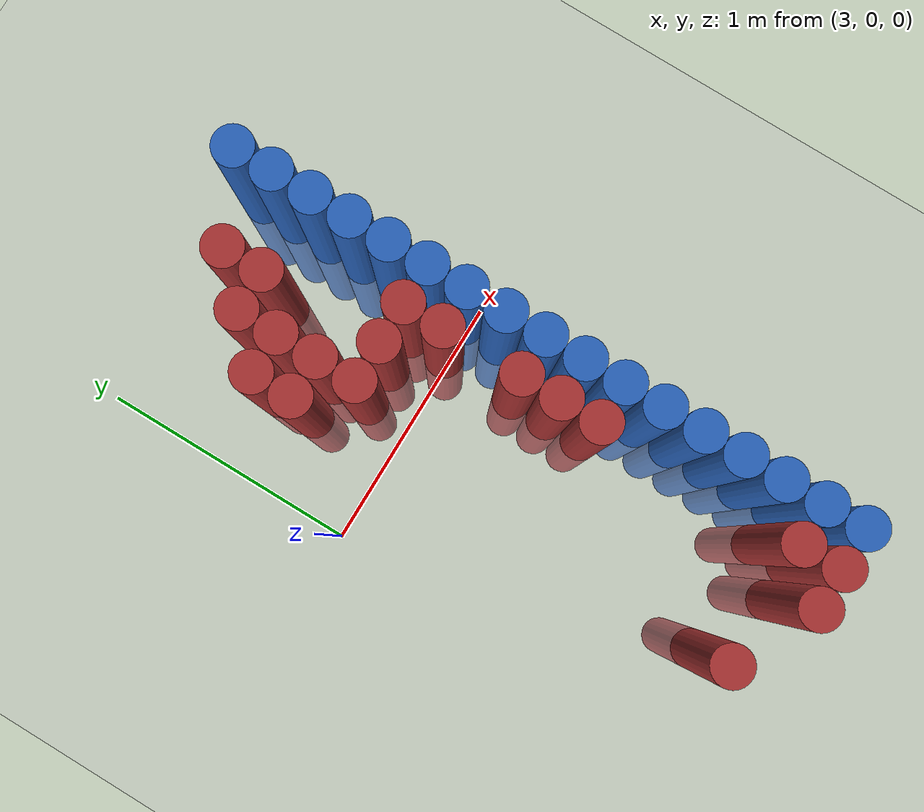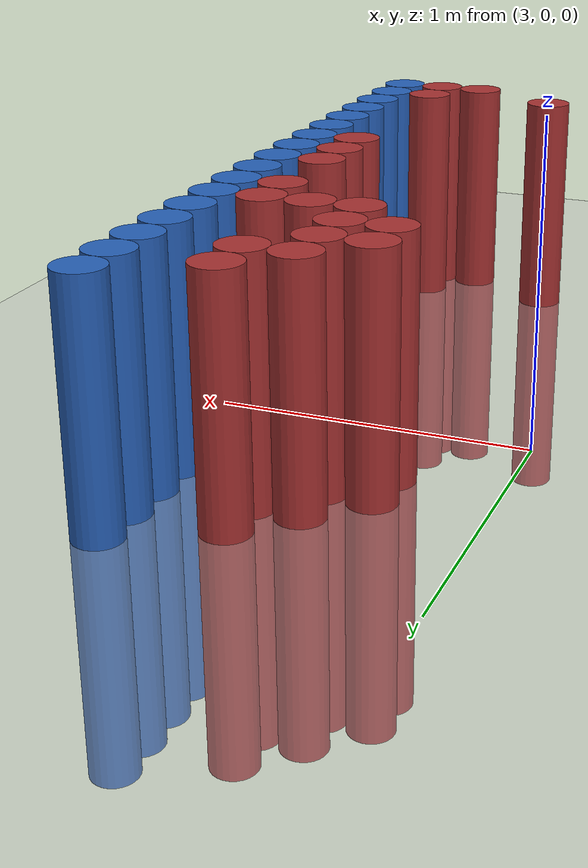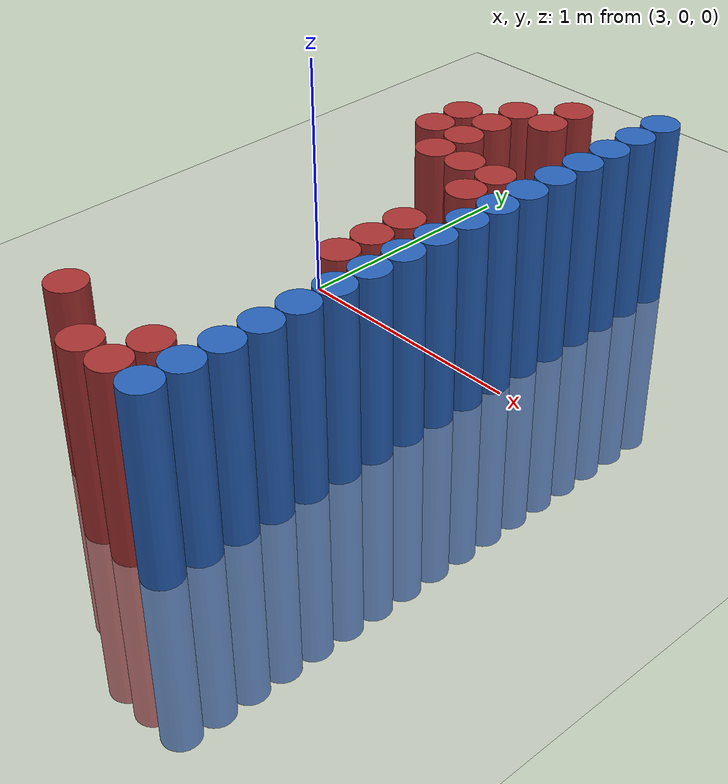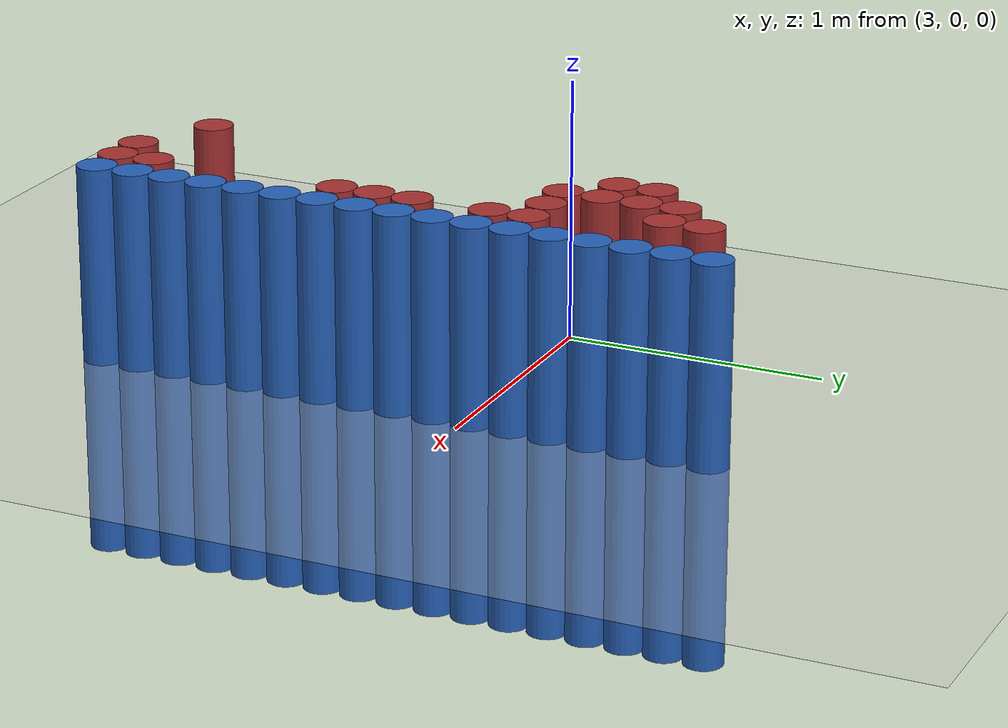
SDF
<sdf version="1.6">
 <world name="default">
  <model name="ground_plane">
   <static>1</static>
   <link name="link">
    <collision name="collision">
     <geometry><plane><normal>0 0 1</normal><size>100 100</size></plane></geometry>
     <surface><friction><ode><mu>100</mu><mu2>50</mu2></ode></friction></surface>
    </collision>
    <visual name="visual">
     <cast_shadows>0</cast_shadows>
     <geometry><plane><normal>0 0 1</normal><size>100 100</size></plane></geometry>
     <material>
      <script><uri>file://media/materials/scripts/gazebo.material</uri><name>Gazebo/Grey</name></script>
     </material>
    </visual>
   </link>
  </model>
  <model name="unit_cylinder_94">
   <static>1</static>
   <pose>3.925000 -1.475000 0.000000 0.000000 0.000000 0.000000</pose>
   <link name="link">
    <inertial>
     <mass>1</mass>
     <inertia><ixx>0.145833</ixx><ixy>0</ixy><ixz>0</ixz><iyy>0.145833</iyy><iyz>0</iyz><izz>0.125</izz></inertia>
    </inertial>
    <collision name="collision">
     <geometry><cylinder><radius>0.075000</radius><length>1.5</length></cylinder></geometry>
    </collision>
    <visual name="visual">
     <geometry><cylinder><radius>0.075000</radius><length>1.5</length></cylinder></geometry>
     <material>
      <ambient>0.152000 0.379000 0.720000 1</ambient>
      <diffuse>0.152000 0.379000 0.720000 1</diffuse>
     </material>
     <material>
      <script><name>Gazebo/Grey</name><uri>file://media/materials/scripts/gazebo.material</uri></script>
     </material>
    </visual>
   </link>
  </model>
  <model name="unit_cylinder_96">
   <static>1</static>
   <pose>3.925000 -1.325000 0.000000 0.000000 0.000000 0.000000</pose>
   <link name="link">
    <inertial>
     <mass>1</mass>
     <inertia><ixx>0.145833</ixx><ixy>0</ixy><ixz>0</ixz><iyy>0.145833</iyy><iyz>0</iyz><izz>0.125</izz></inertia>
    </inertial>
    <collision name="collision">
     <geometry><cylinder><radius>0.075000</radius><length>1.5</length></cylinder></geometry>
    </collision>
    <visual name="visual">
     <geometry><cylinder><radius>0.075000</radius><length>1.5</length></cylinder></geometry>
     <material>
      <ambient>0.152000 0.379000 0.720000 1</ambient>
      <diffuse>0.152000 0.379000 0.720000 1</diffuse>
     </material>
     <material>
      <script><name>Gazebo/Grey</name><uri>file://media/materials/scripts/gazebo.material</uri></script>
     </material>
    </visual>
   </link>
  </model>
  <model name="unit_cylinder_98">
   <static>1</static>
   <pose>3.925000 -1.175000 0.000000 0.000000 0.000000 0.000000</pose>
   <link name="link">
    <inertial>
     <mass>1</mass>
     <inertia><ixx>0.145833</ixx><ixy>0</ixy><ixz>0</ixz><iyy>0.145833</iyy><iyz>0</iyz><izz>0.125</izz></inertia>
    </inertial>
    <collision name="collision">
     <geometry><cylinder><radius>0.075000</radius><length>1.5</length></cylinder></geometry>
    </collision>
    <visual name="visual">
     <geometry><cylinder><radius>0.075000</radius><length>1.5</length></cylinder></geometry>
     <material>
      <ambient>0.152000 0.379000 0.720000 1</ambient>
      <diffuse>0.152000 0.379000 0.720000 1</diffuse>
     </material>
     <material>
      <script><name>Gazebo/Grey</name><uri>file://media/materials/scripts/gazebo.material</uri></script>
     </material>
    </visual>
   </link>
  </model>
  <model name="unit_cylinder_100">
   <static>1</static>
   <pose>3.925000 -1.025000 0.000000 0.000000 0.000000 0.000000</pose>
   <link name="link">
    <inertial>
     <mass>1</mass>
     <inertia><ixx>0.145833</ixx><ixy>0</ixy><ixz>0</ixz><iyy>0.145833</iyy><iyz>0</iyz><izz>0.125</izz></inertia>
    </inertial>
    <collision name="collision">
     <geometry><cylinder><radius>0.075000</radius><length>1.5</length></cylinder></geometry>
    </collision>
    <visual name="visual">
     <geometry><cylinder><radius>0.075000</radius><length>1.5</length></cylinder></geometry>
     <material>
      <ambient>0.152000 0.379000 0.720000 1</ambient>
      <diffuse>0.152000 0.379000 0.720000 1</diffuse>
     </material>
     <material>
      <script><name>Gazebo/Grey</name><uri>file://media/materials/scripts/gazebo.material</uri></script>
     </material>
    </visual>
   </link>
  </model>
  <model name="unit_cylinder_102">
   <static>1</static>
   <pose>3.925000 -0.875000 0.000000 0.000000 0.000000 0.000000</pose>
   <link name="link">
    <inertial>
     <mass>1</mass>
     <inertia><ixx>0.145833</ixx><ixy>0</ixy><ixz>0</ixz><iyy>0.145833</iyy><iyz>0</iyz><izz>0.125</izz></inertia>
    </inertial>
    <collision name="collision">
     <geometry><cylinder><radius>0.075000</radius><length>1.5</length></cylinder></geometry>
    </collision>
    <visual name="visual">
     <geometry><cylinder><radius>0.075000</radius><length>1.5</length></cylinder></geometry>
     <material>
      <ambient>0.152000 0.379000 0.720000 1</ambient>
      <diffuse>0.152000 0.379000 0.720000 1</diffuse>
     </material>
     <material>
      <script><name>Gazebo/Grey</name><uri>file://media/materials/scripts/gazebo.material</uri></script>
     </material>
    </visual>
   </link>
  </model>
  <model name="unit_cylinder_104">
   <static>1</static>
   <pose>3.925000 -0.725000 0.000000 0.000000 0.000000 0.000000</pose>
   <link name="link">
    <inertial>
     <mass>1</mass>
     <inertia><ixx>0.145833</ixx><ixy>0</ixy><ixz>0</ixz><iyy>0.145833</iyy><iyz>0</iyz><izz>0.125</izz></inertia>
    </inertial>
    <collision name="collision">
     <geometry><cylinder><radius>0.075000</radius><length>1.5</length></cylinder></geometry>
    </collision>
    <visual name="visual">
     <geometry><cylinder><radius>0.075000</radius><length>1.5</length></cylinder></geometry>
     <material>
      <ambient>0.152000 0.379000 0.720000 1</ambient>
      <diffuse>0.152000 0.379000 0.720000 1</diffuse>
     </material>
     <material>
      <script><name>Gazebo/Grey</name><uri>file://media/materials/scripts/gazebo.material</uri></script>
     </material>
    </visual>
   </link>
  </model>
  <model name="unit_cylinder_106">
   <static>1</static>
   <pose>3.925000 -0.575000 0.000000 0.000000 0.000000 0.000000</pose>
   <link name="link">
    <inertial>
     <mass>1</mass>
     <inertia><ixx>0.145833</ixx><ixy>0</ixy><ixz>0</ixz><iyy>0.145833</iyy><iyz>0</iyz><izz>0.125</izz></inertia>
    </inertial>
    <collision name="collision">
     <geometry><cylinder><radius>0.075000</radius><length>1.5</length></cylinder></geometry>
    </collision>
    <visual name="visual">
     <geometry><cylinder><radius>0.075000</radius><length>1.5</length></cylinder></geometry>
     <material>
      <ambient>0.152000 0.379000 0.720000 1</ambient>
      <diffuse>0.152000 0.379000 0.720000 1</diffuse>
     </material>
     <material>
      <script><name>Gazebo/Grey</name><uri>file://media/materials/scripts/gazebo.material</uri></script>
     </material>
    </visual>
   </link>
  </model>
  <model name="unit_cylinder_108">
   <static>1</static>
   <pose>3.925000 -0.425000 0.000000 0.000000 0.000000 0.000000</pose>
   <link name="link">
    <inertial>
     <mass>1</mass>
     <inertia><ixx>0.145833</ixx><ixy>0</ixy><ixz>0</ixz><iyy>0.145833</iyy><iyz>0</iyz><izz>0.125</izz></inertia>
    </inertial>
    <collision name="collision">
     <geometry><cylinder><radius>0.075000</radius><length>1.5</length></cylinder></geometry>
    </collision>
    <visual name="visual">
     <geometry><cylinder><radius>0.075000</radius><length>1.5</length></cylinder></geometry>
     <material>
      <ambient>0.152000 0.379000 0.720000 1</ambient>
      <diffuse>0.152000 0.379000 0.720000 1</diffuse>
     </material>
     <material>
      <script><name>Gazebo/Grey</name><uri>file://media/materials/scripts/gazebo.material</uri></script>
     </material>
    </visual>
   </link>
  </model>
  <model name="unit_cylinder_110">
   <static>1</static>
   <pose>3.925000 -0.275000 0.000000 0.000000 0.000000 0.000000</pose>
   <link name="link">
    <inertial>
     <mass>1</mass>
     <inertia><ixx>0.145833</ixx><ixy>0</ixy><ixz>0</ixz><iyy>0.145833</iyy><iyz>0</iyz><izz>0.125</izz></inertia>
    </inertial>
    <collision name="collision">
     <geometry><cylinder><radius>0.075000</radius><length>1.5</length></cylinder></geometry>
    </collision>
    <visual name="visual">
     <geometry><cylinder><radius>0.075000</radius><length>1.5</length></cylinder></geometry>
     <material>
      <ambient>0.152000 0.379000 0.720000 1</ambient>
      <diffuse>0.152000 0.379000 0.720000 1</diffuse>
     </material>
     <material>
      <script><name>Gazebo/Grey</name><uri>file://media/materials/scripts/gazebo.material</uri></script>
     </material>
    </visual>
   </link>
  </model>
  <model name="unit_cylinder_112">
   <static>1</static>
   <pose>3.925000 -0.125000 0.000000 0.000000 0.000000 0.000000</pose>
   <link name="link">
    <inertial>
     <mass>1</mass>
     <inertia><ixx>0.145833</ixx><ixy>0</ixy><ixz>0</ixz><iyy>0.145833</iyy><iyz>0</iyz><izz>0.125</izz></inertia>
    </inertial>
    <collision name="collision">
     <geometry><cylinder><radius>0.075000</radius><length>1.5</length></cylinder></geometry>
    </collision>
    <visual name="visual">
     <geometry><cylinder><radius>0.075000</radius><length>1.5</length></cylinder></geometry>
     <material>
      <ambient>0.152000 0.379000 0.720000 1</ambient>
      <diffuse>0.152000 0.379000 0.720000 1</diffuse>
     </material>
     <material>
      <script><name>Gazebo/Grey</name><uri>file://media/materials/scripts/gazebo.material</uri></script>
     </material>
    </visual>
   </link>
  </model>
  <model name="unit_cylinder_114">
   <static>1</static>
   <pose>3.925000 0.025000 0.000000 0.000000 0.000000 0.000000</pose>
   <link name="link">
    <inertial>
     <mass>1</mass>
     <inertia><ixx>0.145833</ixx><ixy>0</ixy><ixz>0</ixz><iyy>0.145833</iyy><iyz>0</iyz><izz>0.125</izz></inertia>
    </inertial>
    <collision name="collision">
     <geometry><cylinder><radius>0.075000</radius><length>1.5</length></cylinder></geometry>
    </collision>
    <visual name="visual">
     <geometry><cylinder><radius>0.075000</radius><length>1.5</length></cylinder></geometry>
     <material>
      <ambient>0.152000 0.379000 0.720000 1</ambient>
      <diffuse>0.152000 0.379000 0.720000 1</diffuse>
     </material>
     <material>
      <script><name>Gazebo/Grey</name><uri>file://media/materials/scripts/gazebo.material</uri></script>
     </material>
    </visual>
   </link>
  </model>
  <model name="unit_cylinder_116">
   <static>1</static>
   <pose>3.925000 0.175000 0.000000 0.000000 0.000000 0.000000</pose>
   <link name="link">
    <inertial>
     <mass>1</mass>
     <inertia><ixx>0.145833</ixx><ixy>0</ixy><ixz>0</ixz><iyy>0.145833</iyy><iyz>0</iyz><izz>0.125</izz></inertia>
    </inertial>
    <collision name="collision">
     <geometry><cylinder><radius>0.075000</radius><length>1.5</length></cylinder></geometry>
    </collision>
    <visual name="visual">
     <geometry><cylinder><radius>0.075000</radius><length>1.5</length></cylinder></geometry>
     <material>
      <ambient>0.152000 0.379000 0.720000 1</ambient>
      <diffuse>0.152000 0.379000 0.720000 1</diffuse>
     </material>
     <material>
      <script><name>Gazebo/Grey</name><uri>file://media/materials/scripts/gazebo.material</uri></script>
     </material>
    </visual>
   </link>
  </model>
  <model name="unit_cylinder_118">
   <static>1</static>
   <pose>3.925000 0.325000 0.000000 0.000000 0.000000 0.000000</pose>
   <link name="link">
    <inertial>
     <mass>1</mass>
     <inertia><ixx>0.145833</ixx><ixy>0</ixy><ixz>0</ixz><iyy>0.145833</iyy><iyz>0</iyz><izz>0.125</izz></inertia>
    </inertial>
    <collision name="collision">
     <geometry><cylinder><radius>0.075000</radius><length>1.5</length></cylinder></geometry>
    </collision>
    <visual name="visual">
     <geometry><cylinder><radius>0.075000</radius><length>1.5</length></cylinder></geometry>
     <material>
      <ambient>0.152000 0.379000 0.720000 1</ambient>
      <diffuse>0.152000 0.379000 0.720000 1</diffuse>
     </material>
     <material>
      <script><name>Gazebo/Grey</name><uri>file://media/materials/scripts/gazebo.material</uri></script>
     </material>
    </visual>
   </link>
  </model>
  <model name="unit_cylinder_120">
   <static>1</static>
   <pose>3.925000 0.475000 0.000000 0.000000 0.000000 0.000000</pose>
   <link name="link">
    <inertial>
     <mass>1</mass>
     <inertia><ixx>0.145833</ixx><ixy>0</ixy><ixz>0</ixz><iyy>0.145833</iyy><iyz>0</iyz><izz>0.125</izz></inertia>
    </inertial>
    <collision name="collision">
     <geometry><cylinder><radius>0.075000</radius><length>1.5</length></cylinder></geometry>
    </collision>
    <visual name="visual">
     <geometry><cylinder><radius>0.075000</radius><length>1.5</length></cylinder></geometry>
     <material>
      <ambient>0.152000 0.379000 0.720000 1</ambient>
      <diffuse>0.152000 0.379000 0.720000 1</diffuse>
     </material>
     <material>
      <script><name>Gazebo/Grey</name><uri>file://media/materials/scripts/gazebo.material</uri></script>
     </material>
    </visual>
   </link>
  </model>
  <model name="unit_cylinder_122">
   <static>1</static>
   <pose>3.925000 0.625000 0.000000 0.000000 0.000000 0.000000</pose>
   <link name="link">
    <inertial>
     <mass>1</mass>
     <inertia><ixx>0.145833</ixx><ixy>0</ixy><ixz>0</ixz><iyy>0.145833</iyy><iyz>0</iyz><izz>0.125</izz></inertia>
    </inertial>
    <collision name="collision">
     <geometry><cylinder><radius>0.075000</radius><length>1.5</length></cylinder></geometry>
    </collision>
    <visual name="visual">
     <geometry><cylinder><radius>0.075000</radius><length>1.5</length></cylinder></geometry>
     <material>
      <ambient>0.152000 0.379000 0.720000 1</ambient>
      <diffuse>0.152000 0.379000 0.720000 1</diffuse>
     </material>
     <material>
      <script><name>Gazebo/Grey</name><uri>file://media/materials/scripts/gazebo.material</uri></script>
     </material>
    </visual>
   </link>
  </model>
  <model name="unit_cylinder_124">
   <static>1</static>
   <pose>3.925000 0.775000 0.000000 0.000000 0.000000 0.000000</pose>
   <link name="link">
    <inertial>
     <mass>1</mass>
     <inertia><ixx>0.145833</ixx><ixy>0</ixy><ixz>0</ixz><iyy>0.145833</iyy><iyz>0</iyz><izz>0.125</izz></inertia>
    </inertial>
    <collision name="collision">
     <geometry><cylinder><radius>0.075000</radius><length>1.5</length></cylinder></geometry>
    </collision>
    <visual name="visual">
     <geometry><cylinder><radius>0.075000</radius><length>1.5</length></cylinder></geometry>
     <material>
      <ambient>0.152000 0.379000 0.720000 1</ambient>
      <diffuse>0.152000 0.379000 0.720000 1</diffuse>
     </material>
     <material>
      <script><name>Gazebo/Grey</name><uri>file://media/materials/scripts/gazebo.material</uri></script>
     </material>
    </visual>
   </link>
  </model>
  <model name="unit_cylinder_126">
   <static>1</static>
   <pose>3.925000 0.925000 0.000000 0.000000 0.000000 0.000000</pose>
   <link name="link">
    <inertial>
     <mass>1</mass>
     <inertia><ixx>0.145833</ixx><ixy>0</ixy><ixz>0</ixz><iyy>0.145833</iyy><iyz>0</iyz><izz>0.125</izz></inertia>
    </inertial>
    <collision name="collision">
     <geometry><cylinder><radius>0.075000</radius><length>1.5</length></cylinder></geometry>
    </collision>
    <visual name="visual">
     <geometry><cylinder><radius>0.075000</radius><length>1.5</length></cylinder></geometry>
     <material>
      <ambient>0.152000 0.379000 0.720000 1</ambient>
      <diffuse>0.152000 0.379000 0.720000 1</diffuse>
     </material>
     <material>
      <script><name>Gazebo/Grey</name><uri>file://media/materials/scripts/gazebo.material</uri></script>
     </material>
    </visual>
   </link>
  </model>
  <model name="unit_cylinder_551">
   <static>1</static>
   <pose>3.325000 -1.325000 0.000000 0.000000 0.000000 0.000000</pose>
   <link name="link">
    <inertial>
     <mass>1</mass>
     <inertia><ixx>0.145833</ixx><ixy>0</ixy><ixz>0</ixz><iyy>0.145833</iyy><iyz>0</iyz><izz>0.125</izz></inertia>
    </inertial>
    <collision name="collision">
     <geometry><cylinder><radius>0.075000</radius><length>1.5</length></cylinder></geometry>
    </collision>
    <visual name="visual">
     <geometry><cylinder><radius>0.075000</radius><length>1.5</length></cylinder></geometry>
     <material>
      <ambient>0.648000 0.192000 0.192000 1</ambient>
      <diffuse>0.648000 0.192000 0.192000 1</diffuse>
     </material>
     <material>
      <script><name>Gazebo/Grey</name><uri>file://media/materials/scripts/gazebo.material</uri></script>
     </material>
    </visual>
   </link>
  </model>
  <model name="unit_cylinder_552">
   <static>1</static>
   <pose>3.325000 0.325000 0.000000 0.000000 0.000000 0.000000</pose>
   <link name="link">
    <inertial>
     <mass>1</mass>
     <inertia><ixx>0.145833</ixx><ixy>0</ixy><ixz>0</ixz><iyy>0.145833</iyy><iyz>0</iyz><izz>0.125</izz></inertia>
    </inertial>
    <collision name="collision">
     <geometry><cylinder><radius>0.075000</radius><length>1.5</length></cylinder></geometry>
    </collision>
    <visual name="visual">
     <geometry><cylinder><radius>0.075000</radius><length>1.5</length></cylinder></geometry>
     <material>
      <ambient>0.648000 0.192000 0.192000 1</ambient>
      <diffuse>0.648000 0.192000 0.192000 1</diffuse>
     </material>
     <material>
      <script><name>Gazebo/Grey</name><uri>file://media/materials/scripts/gazebo.material</uri></script>
     </material>
    </visual>
   </link>
  </model>
  <model name="unit_cylinder_553">
   <static>1</static>
   <pose>3.325000 0.475000 0.000000 0.000000 0.000000 0.000000</pose>
   <link name="link">
    <inertial>
     <mass>1</mass>
     <inertia><ixx>0.145833</ixx><ixy>0</ixy><ixz>0</ixz><iyy>0.145833</iyy><iyz>0</iyz><izz>0.125</izz></inertia>
    </inertial>
    <collision name="collision">
     <geometry><cylinder><radius>0.075000</radius><length>1.5</length></cylinder></geometry>
    </collision>
    <visual name="visual">
     <geometry><cylinder><radius>0.075000</radius><length>1.5</length></cylinder></geometry>
     <material>
      <ambient>0.648000 0.192000 0.192000 1</ambient>
      <diffuse>0.648000 0.192000 0.192000 1</diffuse>
     </material>
     <material>
      <script><name>Gazebo/Grey</name><uri>file://media/materials/scripts/gazebo.material</uri></script>
     </material>
    </visual>
   </link>
  </model>
  <model name="unit_cylinder_566">
   <static>1</static>
   <pose>3.475000 0.175000 0.000000 0.000000 0.000000 0.000000</pose>
   <link name="link">
    <inertial>
     <mass>1</mass>
     <inertia><ixx>0.145833</ixx><ixy>0</ixy><ixz>0</ixz><iyy>0.145833</iyy><iyz>0</iyz><izz>0.125</izz></inertia>
    </inertial>
    <collision name="collision">
     <geometry><cylinder><radius>0.075000</radius><length>1.5</length></cylinder></geometry>
    </collision>
    <visual name="visual">
     <geometry><cylinder><radius>0.075000</radius><length>1.5</length></cylinder></geometry>
     <material>
      <ambient>0.648000 0.192000 0.192000 1</ambient>
      <diffuse>0.648000 0.192000 0.192000 1</diffuse>
     </material>
     <material>
      <script><name>Gazebo/Grey</name><uri>file://media/materials/scripts/gazebo.material</uri></script>
     </material>
    </visual>
   </link>
  </model>
  <model name="unit_cylinder_567">
   <static>1</static>
   <pose>3.475000 0.325000 0.000000 0.000000 0.000000 0.000000</pose>
   <link name="link">
    <inertial>
     <mass>1</mass>
     <inertia><ixx>0.145833</ixx><ixy>0</ixy><ixz>0</ixz><iyy>0.145833</iyy><iyz>0</iyz><izz>0.125</izz></inertia>
    </inertial>
    <collision name="collision">
     <geometry><cylinder><radius>0.075000</radius><length>1.5</length></cylinder></geometry>
    </collision>
    <visual name="visual">
     <geometry><cylinder><radius>0.075000</radius><length>1.5</length></cylinder></geometry>
     <material>
      <ambient>0.648000 0.192000 0.192000 1</ambient>
      <diffuse>0.648000 0.192000 0.192000 1</diffuse>
     </material>
     <material>
      <script><name>Gazebo/Grey</name><uri>file://media/materials/scripts/gazebo.material</uri></script>
     </material>
    </visual>
   </link>
  </model>
  <model name="unit_cylinder_568">
   <static>1</static>
   <pose>3.475000 0.475000 0.000000 0.000000 0.000000 0.000000</pose>
   <link name="link">
    <inertial>
     <mass>1</mass>
     <inertia><ixx>0.145833</ixx><ixy>0</ixy><ixz>0</ixz><iyy>0.145833</iyy><iyz>0</iyz><izz>0.125</izz></inertia>
    </inertial>
    <collision name="collision">
     <geometry><cylinder><radius>0.075000</radius><length>1.5</length></cylinder></geometry>
    </collision>
    <visual name="visual">
     <geometry><cylinder><radius>0.075000</radius><length>1.5</length></cylinder></geometry>
     <material>
      <ambient>0.648000 0.192000 0.192000 1</ambient>
      <diffuse>0.648000 0.192000 0.192000 1</diffuse>
     </material>
     <material>
      <script><name>Gazebo/Grey</name><uri>file://media/materials/scripts/gazebo.material</uri></script>
     </material>
    </visual>
   </link>
  </model>
  <model name="unit_cylinder_569">
   <static>1</static>
   <pose>3.475000 0.625000 0.000000 0.000000 0.000000 0.000000</pose>
   <link name="link">
    <inertial>
     <mass>1</mass>
     <inertia><ixx>0.145833</ixx><ixy>0</ixy><ixz>0</ixz><iyy>0.145833</iyy><iyz>0</iyz><izz>0.125</izz></inertia>
    </inertial>
    <collision name="collision">
     <geometry><cylinder><radius>0.075000</radius><length>1.5</length></cylinder></geometry>
    </collision>
    <visual name="visual">
     <geometry><cylinder><radius>0.075000</radius><length>1.5</length></cylinder></geometry>
     <material>
      <ambient>0.648000 0.192000 0.192000 1</ambient>
      <diffuse>0.648000 0.192000 0.192000 1</diffuse>
     </material>
     <material>
      <script><name>Gazebo/Grey</name><uri>file://media/materials/scripts/gazebo.material</uri></script>
     </material>
    </visual>
   </link>
  </model>
  <model name="unit_cylinder_581">
   <static>1</static>
   <pose>3.625000 -1.475000 0.000000 0.000000 0.000000 0.000000</pose>
   <link name="link">
    <inertial>
     <mass>1</mass>
     <inertia><ixx>0.145833</ixx><ixy>0</ixy><ixz>0</ixz><iyy>0.145833</iyy><iyz>0</iyz><izz>0.125</izz></inertia>
    </inertial>
    <collision name="collision">
     <geometry><cylinder><radius>0.075000</radius><length>1.5</length></cylinder></geometry>
    </collision>
    <visual name="visual">
     <geometry><cylinder><radius>0.075000</radius><length>1.5</length></cylinder></geometry>
     <material>
      <ambient>0.648000 0.192000 0.192000 1</ambient>
      <diffuse>0.648000 0.192000 0.192000 1</diffuse>
     </material>
     <material>
      <script><name>Gazebo/Grey</name><uri>file://media/materials/scripts/gazebo.material</uri></script>
     </material>
    </visual>
   </link>
  </model>
  <model name="unit_cylinder_582">
   <static>1</static>
   <pose>3.625000 0.175000 0.000000 0.000000 0.000000 0.000000</pose>
   <link name="link">
    <inertial>
     <mass>1</mass>
     <inertia><ixx>0.145833</ixx><ixy>0</ixy><ixz>0</ixz><iyy>0.145833</iyy><iyz>0</iyz><izz>0.125</izz></inertia>
    </inertial>
    <collision name="collision">
     <geometry><cylinder><radius>0.075000</radius><length>1.5</length></cylinder></geometry>
    </collision>
    <visual name="visual">
     <geometry><cylinder><radius>0.075000</radius><length>1.5</length></cylinder></geometry>
     <material>
      <ambient>0.648000 0.192000 0.192000 1</ambient>
      <diffuse>0.648000 0.192000 0.192000 1</diffuse>
     </material>
     <material>
      <script><name>Gazebo/Grey</name><uri>file://media/materials/scripts/gazebo.material</uri></script>
     </material>
    </visual>
   </link>
  </model>
  <model name="unit_cylinder_583">
   <static>1</static>
   <pose>3.625000 0.625000 0.000000 0.000000 0.000000 0.000000</pose>
   <link name="link">
    <inertial>
     <mass>1</mass>
     <inertia><ixx>0.145833</ixx><ixy>0</ixy><ixz>0</ixz><iyy>0.145833</iyy><iyz>0</iyz><izz>0.125</izz></inertia>
    </inertial>
    <collision name="collision">
     <geometry><cylinder><radius>0.075000</radius><length>1.5</length></cylinder></geometry>
    </collision>
    <visual name="visual">
     <geometry><cylinder><radius>0.075000</radius><length>1.5</length></cylinder></geometry>
     <material>
      <ambient>0.648000 0.192000 0.192000 1</ambient>
      <diffuse>0.648000 0.192000 0.192000 1</diffuse>
     </material>
     <material>
      <script><name>Gazebo/Grey</name><uri>file://media/materials/scripts/gazebo.material</uri></script>
     </material>
    </visual>
   </link>
  </model>
  <model name="unit_cylinder_584">
   <static>1</static>
   <pose>3.625000 0.775000 0.000000 0.000000 0.000000 0.000000</pose>
   <link name="link">
    <inertial>
     <mass>1</mass>
     <inertia><ixx>0.145833</ixx><ixy>0</ixy><ixz>0</ixz><iyy>0.145833</iyy><iyz>0</iyz><izz>0.125</izz></inertia>
    </inertial>
    <collision name="collision">
     <geometry><cylinder><radius>0.075000</radius><length>1.5</length></cylinder></geometry>
    </collision>
    <visual name="visual">
     <geometry><cylinder><radius>0.075000</radius><length>1.5</length></cylinder></geometry>
     <material>
      <ambient>0.648000 0.192000 0.192000 1</ambient>
      <diffuse>0.648000 0.192000 0.192000 1</diffuse>
     </material>
     <material>
      <script><name>Gazebo/Grey</name><uri>file://media/materials/scripts/gazebo.material</uri></script>
     </material>
    </visual>
   </link>
  </model>
  <model name="unit_cylinder_594">
   <static>1</static>
   <pose>3.775000 -1.475000 0.000000 0.000000 0.000000 0.000000</pose>
   <link name="link">
    <inertial>
     <mass>1</mass>
     <inertia><ixx>0.145833</ixx><ixy>0</ixy><ixz>0</ixz><iyy>0.145833</iyy><iyz>0</iyz><izz>0.125</izz></inertia>
    </inertial>
    <collision name="collision">
     <geometry><cylinder><radius>0.075000</radius><length>1.5</length></cylinder></geometry>
    </collision>
    <visual name="visual">
     <geometry><cylinder><radius>0.075000</radius><length>1.5</length></cylinder></geometry>
     <material>
      <ambient>0.648000 0.192000 0.192000 1</ambient>
      <diffuse>0.648000 0.192000 0.192000 1</diffuse>
     </material>
     <material>
      <script><name>Gazebo/Grey</name><uri>file://media/materials/scripts/gazebo.material</uri></script>
     </material>
    </visual>
   </link>
  </model>
  <model name="unit_cylinder_595">
   <static>1</static>
   <pose>3.775000 -1.325000 0.000000 0.000000 0.000000 0.000000</pose>
   <link name="link">
    <inertial>
     <mass>1</mass>
     <inertia><ixx>0.145833</ixx><ixy>0</ixy><ixz>0</ixz><iyy>0.145833</iyy><iyz>0</iyz><izz>0.125</izz></inertia>
    </inertial>
    <collision name="collision">
     <geometry><cylinder><radius>0.075000</radius><length>1.5</length></cylinder></geometry>
    </collision>
    <visual name="visual">
     <geometry><cylinder><radius>0.075000</radius><length>1.5</length></cylinder></geometry>
     <material>
      <ambient>0.648000 0.192000 0.192000 1</ambient>
      <diffuse>0.648000 0.192000 0.192000 1</diffuse>
     </material>
     <material>
      <script><name>Gazebo/Grey</name><uri>file://media/materials/scripts/gazebo.material</uri></script>
     </material>
    </visual>
   </link>
  </model>
  <model name="unit_cylinder_596">
   <static>1</static>
   <pose>3.775000 -0.575000 0.000000 0.000000 0.000000 0.000000</pose>
   <link name="link">
    <inertial>
     <mass>1</mass>
     <inertia><ixx>0.145833</ixx><ixy>0</ixy><ixz>0</ixz><iyy>0.145833</iyy><iyz>0</iyz><izz>0.125</izz></inertia>
    </inertial>
    <collision name="collision">
     <geometry><cylinder><radius>0.075000</radius><length>1.5</length></cylinder></geometry>
    </collision>
    <visual name="visual">
     <geometry><cylinder><radius>0.075000</radius><length>1.5</length></cylinder></geometry>
     <material>
      <ambient>0.648000 0.192000 0.192000 1</ambient>
      <diffuse>0.648000 0.192000 0.192000 1</diffuse>
     </material>
     <material>
      <script><name>Gazebo/Grey</name><uri>file://media/materials/scripts/gazebo.material</uri></script>
     </material>
    </visual>
   </link>
  </model>
  <model name="unit_cylinder_597">
   <static>1</static>
   <pose>3.775000 -0.425000 0.000000 0.000000 0.000000 0.000000</pose>
   <link name="link">
    <inertial>
     <mass>1</mass>
     <inertia><ixx>0.145833</ixx><ixy>0</ixy><ixz>0</ixz><iyy>0.145833</iyy><iyz>0</iyz><izz>0.125</izz></inertia>
    </inertial>
    <collision name="collision">
     <geometry><cylinder><radius>0.075000</radius><length>1.5</length></cylinder></geometry>
    </collision>
    <visual name="visual">
     <geometry><cylinder><radius>0.075000</radius><length>1.5</length></cylinder></geometry>
     <material>
      <ambient>0.648000 0.192000 0.192000 1</ambient>
      <diffuse>0.648000 0.192000 0.192000 1</diffuse>
     </material>
     <material>
      <script><name>Gazebo/Grey</name><uri>file://media/materials/scripts/gazebo.material</uri></script>
     </material>
    </visual>
   </link>
  </model>
  <model name="unit_cylinder_598">
   <static>1</static>
   <pose>3.775000 -0.275000 0.000000 0.000000 0.000000 0.000000</pose>
   <link name="link">
    <inertial>
     <mass>1</mass>
     <inertia><ixx>0.145833</ixx><ixy>0</ixy><ixz>0</ixz><iyy>0.145833</iyy><iyz>0</iyz><izz>0.125</izz></inertia>
    </inertial>
    <collision name="collision">
     <geometry><cylinder><radius>0.075000</radius><length>1.5</length></cylinder></geometry>
    </collision>
    <visual name="visual">
     <geometry><cylinder><radius>0.075000</radius><length>1.5</length></cylinder></geometry>
     <material>
      <ambient>0.648000 0.192000 0.192000 1</ambient>
      <diffuse>0.648000 0.192000 0.192000 1</diffuse>
     </material>
     <material>
      <script><name>Gazebo/Grey</name><uri>file://media/materials/scripts/gazebo.material</uri></script>
     </material>
    </visual>
   </link>
  </model>
  <model name="unit_cylinder_599">
   <static>1</static>
   <pose>3.775000 0.025000 0.000000 0.000000 0.000000 0.000000</pose>
   <link name="link">
    <inertial>
     <mass>1</mass>
     <inertia><ixx>0.145833</ixx><ixy>0</ixy><ixz>0</ixz><iyy>0.145833</iyy><iyz>0</iyz><izz>0.125</izz></inertia>
    </inertial>
    <collision name="collision">
     <geometry><cylinder><radius>0.075000</radius><length>1.5</length></cylinder></geometry>
    </collision>
    <visual name="visual">
     <geometry><cylinder><radius>0.075000</radius><length>1.5</length></cylinder></geometry>
     <material>
      <ambient>0.648000 0.192000 0.192000 1</ambient>
      <diffuse>0.648000 0.192000 0.192000 1</diffuse>
     </material>
     <material>
      <script><name>Gazebo/Grey</name><uri>file://media/materials/scripts/gazebo.material</uri></script>
     </material>
    </visual>
   </link>
  </model>
  <model name="unit_cylinder_600">
   <static>1</static>
   <pose>3.775000 0.175000 0.000000 0.000000 0.000000 0.000000</pose>
   <link name="link">
    <inertial>
     <mass>1</mass>
     <inertia><ixx>0.145833</ixx><ixy>0</ixy><ixz>0</ixz><iyy>0.145833</iyy><iyz>0</iyz><izz>0.125</izz></inertia>
    </inertial>
    <collision name="collision">
     <geometry><cylinder><radius>0.075000</radius><length>1.5</length></cylinder></geometry>
    </collision>
    <visual name="visual">
     <geometry><cylinder><radius>0.075000</radius><length>1.5</length></cylinder></geometry>
     <material>
      <ambient>0.648000 0.192000 0.192000 1</ambient>
      <diffuse>0.648000 0.192000 0.192000 1</diffuse>
     </material>
     <material>
      <script><name>Gazebo/Grey</name><uri>file://media/materials/scripts/gazebo.material</uri></script>
     </material>
    </visual>
   </link>
  </model>
  <model name="unit_cylinder_617">
   <static>1</static>
   <pose>3.925000 -1.475000 0.000000 0.000000 0.000000 0.000000</pose>
   <link name="link">
    <inertial>
     <mass>1</mass>
     <inertia><ixx>0.145833</ixx><ixy>0</ixy><ixz>0</ixz><iyy>0.145833</iyy><iyz>0</iyz><izz>0.125</izz></inertia>
    </inertial>
    <collision name="collision">
     <geometry><cylinder><radius>0.075000</radius><length>1.5</length></cylinder></geometry>
    </collision>
    <visual name="visual">
     <geometry><cylinder><radius>0.075000</radius><length>1.5</length></cylinder></geometry>
     <material>
      <ambient>0.152000 0.379000 0.720000 1</ambient>
      <diffuse>0.152000 0.379000 0.720000 1</diffuse>
     </material>
     <material>
      <script><name>Gazebo/Grey</name><uri>file://media/materials/scripts/gazebo.material</uri></script>
     </material>
    </visual>
   </link>
  </model>
  <model name="unit_cylinder_618">
   <static>1</static>
   <pose>3.925000 -1.325000 0.000000 0.000000 0.000000 0.000000</pose>
   <link name="link">
    <inertial>
     <mass>1</mass>
     <inertia><ixx>0.145833</ixx><ixy>0</ixy><ixz>0</ixz><iyy>0.145833</iyy><iyz>0</iyz><izz>0.125</izz></inertia>
    </inertial>
    <collision name="collision">
     <geometry><cylinder><radius>0.075000</radius><length>1.5</length></cylinder></geometry>
    </collision>
    <visual name="visual">
     <geometry><cylinder><radius>0.075000</radius><length>1.5</length></cylinder></geometry>
     <material>
      <ambient>0.152000 0.379000 0.720000 1</ambient>
      <diffuse>0.152000 0.379000 0.720000 1</diffuse>
     </material>
     <material>
      <script><name>Gazebo/Grey</name><uri>file://media/materials/scripts/gazebo.material</uri></script>
     </material>
    </visual>
   </link>
  </model>
  <model name="unit_cylinder_619">
   <static>1</static>
   <pose>3.925000 -1.175000 0.000000 0.000000 0.000000 0.000000</pose>
   <link name="link">
    <inertial>
     <mass>1</mass>
     <inertia><ixx>0.145833</ixx><ixy>0</ixy><ixz>0</ixz><iyy>0.145833</iyy><iyz>0</iyz><izz>0.125</izz></inertia>
    </inertial>
    <collision name="collision">
     <geometry><cylinder><radius>0.075000</radius><length>1.5</length></cylinder></geometry>
    </collision>
    <visual name="visual">
     <geometry><cylinder><radius>0.075000</radius><length>1.5</length></cylinder></geometry>
     <material>
      <ambient>0.152000 0.379000 0.720000 1</ambient>
      <diffuse>0.152000 0.379000 0.720000 1</diffuse>
     </material>
     <material>
      <script><name>Gazebo/Grey</name><uri>file://media/materials/scripts/gazebo.material</uri></script>
     </material>
    </visual>
   </link>
  </model>
  <model name="unit_cylinder_620">
   <static>1</static>
   <pose>3.925000 -1.025000 0.000000 0.000000 0.000000 0.000000</pose>
   <link name="link">
    <inertial>
     <mass>1</mass>
     <inertia><ixx>0.145833</ixx><ixy>0</ixy><ixz>0</ixz><iyy>0.145833</iyy><iyz>0</iyz><izz>0.125</izz></inertia>
    </inertial>
    <collision name="collision">
     <geometry><cylinder><radius>0.075000</radius><length>1.5</length></cylinder></geometry>
    </collision>
    <visual name="visual">
     <geometry><cylinder><radius>0.075000</radius><length>1.5</length></cylinder></geometry>
     <material>
      <ambient>0.152000 0.379000 0.720000 1</ambient>
      <diffuse>0.152000 0.379000 0.720000 1</diffuse>
     </material>
     <material>
      <script><name>Gazebo/Grey</name><uri>file://media/materials/scripts/gazebo.material</uri></script>
     </material>
    </visual>
   </link>
  </model>
  <model name="unit_cylinder_621">
   <static>1</static>
   <pose>3.925000 -0.875000 0.000000 0.000000 0.000000 0.000000</pose>
   <link name="link">
    <inertial>
     <mass>1</mass>
     <inertia><ixx>0.145833</ixx><ixy>0</ixy><ixz>0</ixz><iyy>0.145833</iyy><iyz>0</iyz><izz>0.125</izz></inertia>
    </inertial>
    <collision name="collision">
     <geometry><cylinder><radius>0.075000</radius><length>1.5</length></cylinder></geometry>
    </collision>
    <visual name="visual">
     <geometry><cylinder><radius>0.075000</radius><length>1.5</length></cylinder></geometry>
     <material>
      <ambient>0.152000 0.379000 0.720000 1</ambient>
      <diffuse>0.152000 0.379000 0.720000 1</diffuse>
     </material>
     <material>
      <script><name>Gazebo/Grey</name><uri>file://media/materials/scripts/gazebo.material</uri></script>
     </material>
    </visual>
   </link>
  </model>
  <model name="unit_cylinder_622">
   <static>1</static>
   <pose>3.925000 -0.725000 0.000000 0.000000 0.000000 0.000000</pose>
   <link name="link">
    <inertial>
     <mass>1</mass>
     <inertia><ixx>0.145833</ixx><ixy>0</ixy><ixz>0</ixz><iyy>0.145833</iyy><iyz>0</iyz><izz>0.125</izz></inertia>
    </inertial>
    <collision name="collision">
     <geometry><cylinder><radius>0.075000</radius><length>1.5</length></cylinder></geometry>
    </collision>
    <visual name="visual">
     <geometry><cylinder><radius>0.075000</radius><length>1.5</length></cylinder></geometry>
     <material>
      <ambient>0.152000 0.379000 0.720000 1</ambient>
      <diffuse>0.152000 0.379000 0.720000 1</diffuse>
     </material>
     <material>
      <script><name>Gazebo/Grey</name><uri>file://media/materials/scripts/gazebo.material</uri></script>
     </material>
    </visual>
   </link>
  </model>
  <model name="unit_cylinder_623">
   <static>1</static>
   <pose>3.925000 -0.575000 0.000000 0.000000 0.000000 0.000000</pose>
   <link name="link">
    <inertial>
     <mass>1</mass>
     <inertia><ixx>0.145833</ixx><ixy>0</ixy><ixz>0</ixz><iyy>0.145833</iyy><iyz>0</iyz><izz>0.125</izz></inertia>
    </inertial>
    <collision name="collision">
     <geometry><cylinder><radius>0.075000</radius><length>1.5</length></cylinder></geometry>
    </collision>
    <visual name="visual">
     <geometry><cylinder><radius>0.075000</radius><length>1.5</length></cylinder></geometry>
     <material>
      <ambient>0.152000 0.379000 0.720000 1</ambient>
      <diffuse>0.152000 0.379000 0.720000 1</diffuse>
     </material>
     <material>
      <script><name>Gazebo/Grey</name><uri>file://media/materials/scripts/gazebo.material</uri></script>
     </material>
    </visual>
   </link>
  </model>
  <model name="unit_cylinder_624">
   <static>1</static>
   <pose>3.925000 -0.425000 0.000000 0.000000 0.000000 0.000000</pose>
   <link name="link">
    <inertial>
     <mass>1</mass>
     <inertia><ixx>0.145833</ixx><ixy>0</ixy><ixz>0</ixz><iyy>0.145833</iyy><iyz>0</iyz><izz>0.125</izz></inertia>
    </inertial>
    <collision name="collision">
     <geometry><cylinder><radius>0.075000</radius><length>1.5</length></cylinder></geometry>
    </collision>
    <visual name="visual">
     <geometry><cylinder><radius>0.075000</radius><length>1.5</length></cylinder></geometry>
     <material>
      <ambient>0.152000 0.379000 0.720000 1</ambient>
      <diffuse>0.152000 0.379000 0.720000 1</diffuse>
     </material>
     <material>
      <script><name>Gazebo/Grey</name><uri>file://media/materials/scripts/gazebo.material</uri></script>
     </material>
    </visual>
   </link>
  </model>
  <model name="unit_cylinder_625">
   <static>1</static>
   <pose>3.925000 -0.275000 0.000000 0.000000 0.000000 0.000000</pose>
   <link name="link">
    <inertial>
     <mass>1</mass>
     <inertia><ixx>0.145833</ixx><ixy>0</ixy><ixz>0</ixz><iyy>0.145833</iyy><iyz>0</iyz><izz>0.125</izz></inertia>
    </inertial>
    <collision name="collision">
     <geometry><cylinder><radius>0.075000</radius><length>1.5</length></cylinder></geometry>
    </collision>
    <visual name="visual">
     <geometry><cylinder><radius>0.075000</radius><length>1.5</length></cylinder></geometry>
     <material>
      <ambient>0.152000 0.379000 0.720000 1</ambient>
      <diffuse>0.152000 0.379000 0.720000 1</diffuse>
     </material>
     <material>
      <script><name>Gazebo/Grey</name><uri>file://media/materials/scripts/gazebo.material</uri></script>
     </material>
    </visual>
   </link>
  </model>
  <model name="unit_cylinder_626">
   <static>1</static>
   <pose>3.925000 -0.125000 0.000000 0.000000 0.000000 0.000000</pose>
   <link name="link">
    <inertial>
     <mass>1</mass>
     <inertia><ixx>0.145833</ixx><ixy>0</ixy><ixz>0</ixz><iyy>0.145833</iyy><iyz>0</iyz><izz>0.125</izz></inertia>
    </inertial>
    <collision name="collision">
     <geometry><cylinder><radius>0.075000</radius><length>1.5</length></cylinder></geometry>
    </collision>
    <visual name="visual">
     <geometry><cylinder><radius>0.075000</radius><length>1.5</length></cylinder></geometry>
     <material>
      <ambient>0.152000 0.379000 0.720000 1</ambient>
      <diffuse>0.152000 0.379000 0.720000 1</diffuse>
     </material>
     <material>
      <script><name>Gazebo/Grey</name><uri>file://media/materials/scripts/gazebo.material</uri></script>
     </material>
    </visual>
   </link>
  </model>
  <model name="unit_cylinder_627">
   <static>1</static>
   <pose>3.925000 0.025000 0.000000 0.000000 0.000000 0.000000</pose>
   <link name="link">
    <inertial>
     <mass>1</mass>
     <inertia><ixx>0.145833</ixx><ixy>0</ixy><ixz>0</ixz><iyy>0.145833</iyy><iyz>0</iyz><izz>0.125</izz></inertia>
    </inertial>
    <collision name="collision">
     <geometry><cylinder><radius>0.075000</radius><length>1.5</length></cylinder></geometry>
    </collision>
    <visual name="visual">
     <geometry><cylinder><radius>0.075000</radius><length>1.5</length></cylinder></geometry>
     <material>
      <ambient>0.152000 0.379000 0.720000 1</ambient>
      <diffuse>0.152000 0.379000 0.720000 1</diffuse>
     </material>
     <material>
      <script><name>Gazebo/Grey</name><uri>file://media/materials/scripts/gazebo.material</uri></script>
     </material>
    </visual>
   </link>
  </model>
  <model name="unit_cylinder_628">
   <static>1</static>
   <pose>3.925000 0.175000 0.000000 0.000000 0.000000 0.000000</pose>
   <link name="link">
    <inertial>
     <mass>1</mass>
     <inertia><ixx>0.145833</ixx><ixy>0</ixy><ixz>0</ixz><iyy>0.145833</iyy><iyz>0</iyz><izz>0.125</izz></inertia>
    </inertial>
    <collision name="collision">
     <geometry><cylinder><radius>0.075000</radius><length>1.5</length></cylinder></geometry>
    </collision>
    <visual name="visual">
     <geometry><cylinder><radius>0.075000</radius><length>1.5</length></cylinder></geometry>
     <material>
      <ambient>0.152000 0.379000 0.720000 1</ambient>
      <diffuse>0.152000 0.379000 0.720000 1</diffuse>
     </material>
     <material>
      <script><name>Gazebo/Grey</name><uri>file://media/materials/scripts/gazebo.material</uri></script>
     </material>
    </visual>
   </link>
  </model>
  <model name="unit_cylinder_629">
   <static>1</static>
   <pose>3.925000 0.325000 0.000000 0.000000 0.000000 0.000000</pose>
   <link name="link">
    <inertial>
     <mass>1</mass>
     <inertia><ixx>0.145833</ixx><ixy>0</ixy><ixz>0</ixz><iyy>0.145833</iyy><iyz>0</iyz><izz>0.125</izz></inertia>
    </inertial>
    <collision name="collision">
     <geometry><cylinder><radius>0.075000</radius><length>1.5</length></cylinder></geometry>
    </collision>
    <visual name="visual">
     <geometry><cylinder><radius>0.075000</radius><length>1.5</length></cylinder></geometry>
     <material>
      <ambient>0.152000 0.379000 0.720000 1</ambient>
      <diffuse>0.152000 0.379000 0.720000 1</diffuse>
     </material>
     <material>
      <script><name>Gazebo/Grey</name><uri>file://media/materials/scripts/gazebo.material</uri></script>
     </material>
    </visual>
   </link>
  </model>
  <model name="unit_cylinder_630">
   <static>1</static>
   <pose>3.925000 0.475000 0.000000 0.000000 0.000000 0.000000</pose>
   <link name="link">
    <inertial>
     <mass>1</mass>
     <inertia><ixx>0.145833</ixx><ixy>0</ixy><ixz>0</ixz><iyy>0.145833</iyy><iyz>0</iyz><izz>0.125</izz></inertia>
    </inertial>
    <collision name="collision">
     <geometry><cylinder><radius>0.075000</radius><length>1.5</length></cylinder></geometry>
    </collision>
    <visual name="visual">
     <geometry><cylinder><radius>0.075000</radius><length>1.5</length></cylinder></geometry>
     <material>
      <ambient>0.152000 0.379000 0.720000 1</ambient>
      <diffuse>0.152000 0.379000 0.720000 1</diffuse>
     </material>
     <material>
      <script><name>Gazebo/Grey</name><uri>file://media/materials/scripts/gazebo.material</uri></script>
     </material>
    </visual>
   </link>
  </model>
  <model name="unit_cylinder_631">
   <static>1</static>
   <pose>3.925000 0.625000 0.000000 0.000000 0.000000 0.000000</pose>
   <link name="link">
    <inertial>
     <mass>1</mass>
     <inertia><ixx>0.145833</ixx><ixy>0</ixy><ixz>0</ixz><iyy>0.145833</iyy><iyz>0</iyz><izz>0.125</izz></inertia>
    </inertial>
    <collision name="collision">
     <geometry><cylinder><radius>0.075000</radius><length>1.5</length></cylinder></geometry>
    </collision>
    <visual name="visual">
     <geometry><cylinder><radius>0.075000</radius><length>1.5</length></cylinder></geometry>
     <material>
      <ambient>0.152000 0.379000 0.720000 1</ambient>
      <diffuse>0.152000 0.379000 0.720000 1</diffuse>
     </material>
     <material>
      <script><name>Gazebo/Grey</name><uri>file://media/materials/scripts/gazebo.material</uri></script>
     </material>
    </visual>
   </link>
  </model>
  <model name="unit_cylinder_632">
   <static>1</static>
   <pose>3.925000 0.775000 0.000000 0.000000 0.000000 0.000000</pose>
   <link name="link">
    <inertial>
     <mass>1</mass>
     <inertia><ixx>0.145833</ixx><ixy>0</ixy><ixz>0</ixz><iyy>0.145833</iyy><iyz>0</iyz><izz>0.125</izz></inertia>
    </inertial>
    <collision name="collision">
     <geometry><cylinder><radius>0.075000</radius><length>1.5</length></cylinder></geometry>
    </collision>
    <visual name="visual">
     <geometry><cylinder><radius>0.075000</radius><length>1.5</length></cylinder></geometry>
     <material>
      <ambient>0.152000 0.379000 0.720000 1</ambient>
      <diffuse>0.152000 0.379000 0.720000 1</diffuse>
     </material>
     <material>
      <script><name>Gazebo/Grey</name><uri>file://media/materials/scripts/gazebo.material</uri></script>
     </material>
    </visual>
   </link>
  </model>
 </world>
</sdf>
